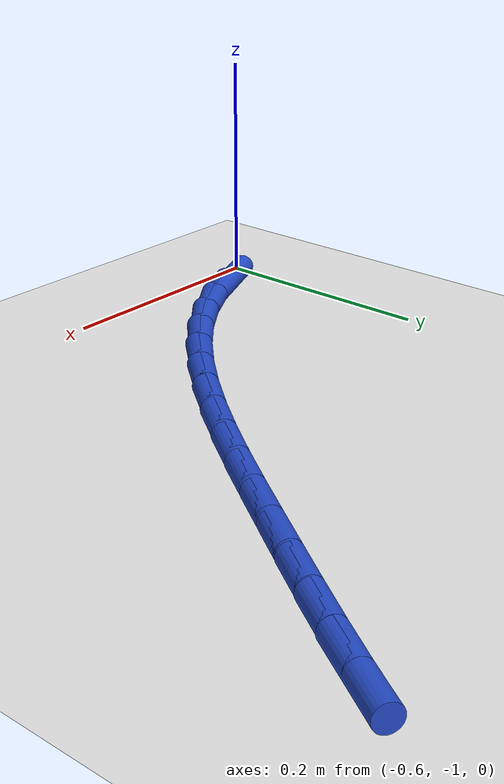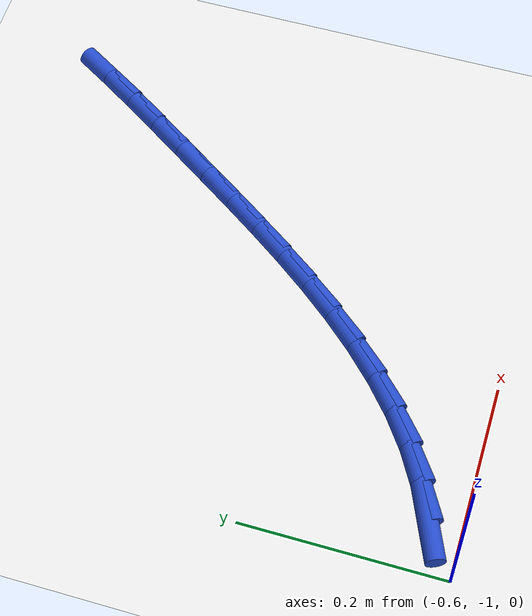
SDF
<sdf version="1.6">
 <world name="default">
  <model name="ground_plane">
   <static>1</static>
   <link name="link">
    <collision name="collision">
     <geometry><plane><normal>0 0 1</normal><size>100 100</size></plane></geometry>
     <surface><friction><ode><mu>100</mu><mu2>50</mu2></ode></friction></surface>
    </collision>
    <visual name="visual">
     <cast_shadows>0</cast_shadows>
     <geometry><plane><normal>0 0 1</normal><size>100 100</size></plane></geometry>
     <material>
      <script><uri>file://media/materials/scripts/gazebo.material</uri><name>Gazebo/WhiteGlow</name></script>
     </material>
    </visual>
   </link>
  </model>
  <model name="line">
   <link name="link_151">
    <pose>-0.5534327806249866 -0.9672916519409277 0.01 0 1.57 0.4067904997622193</pose>
    <collision name="collision">
     <geometry><cylinder><radius>0.01</radius><length>0.08</length></cylinder></geometry>
    </collision>
    <visual name="visual">
     <material>
      <script><name>Gazebo/Blue</name><uri>file://media/materials/scripts/gazebo.material</uri></script>
     </material>
     <geometry><cylinder><radius>0.01</radius><length>0.08</length></cylinder></geometry>
    </visual>
   </link>
   <link name="link_152">
    <pose>-0.5190121394605093 -0.9524625265877732 0.01 0 1.57 0.5188084303446885</pose>
    <collision name="collision">
     <geometry><cylinder><radius>0.01</radius><length>0.08</length></cylinder></geometry>
    </collision>
    <visual name="visual">
     <material>
      <script><name>Gazebo/Blue</name><uri>file://media/materials/scripts/gazebo.material</uri></script>
     </material>
     <geometry><cylinder><radius>0.01</radius><length>0.08</length></cylinder></geometry>
    </visual>
   </link>
   <link name="link_153">
    <pose>-0.4862781835377701 -0.9337720692004823 0.01 0 1.57 0.6174773219399088</pose>
    <collision name="collision">
     <geometry><cylinder><radius>0.01</radius><length>0.08</length></cylinder></geometry>
    </collision>
    <visual name="visual">
     <material>
      <script><name>Gazebo/Blue</name><uri>file://media/materials/scripts/gazebo.material</uri></script>
     </material>
     <geometry><cylinder><radius>0.01</radius><length>0.08</length></cylinder></geometry>
    </visual>
   </link>
   <link name="link_154">
    <pose>-0.4551000719923489 -0.9116322601148277 0.01 0 1.57 0.7021583661522898</pose>
    <collision name="collision">
     <geometry><cylinder><radius>0.01</radius><length>0.08</length></cylinder></geometry>
    </collision>
    <visual name="visual">
     <material>
      <script><name>Gazebo/Blue</name><uri>file://media/materials/scripts/gazebo.material</uri></script>
     </material>
     <geometry><cylinder><radius>0.01</radius><length>0.08</length></cylinder></geometry>
    </visual>
   </link>
   <link name="link_155">
    <pose>-0.4253452433323904 -0.8864601295902007 0.01 0 1.57 0.773369105062369</pose>
    <collision name="collision">
     <geometry><cylinder><radius>0.01</radius><length>0.08</length></cylinder></geometry>
    </collision>
    <visual name="visual">
     <material>
      <script><name>Gazebo/Blue</name><uri>file://media/materials/scripts/gazebo.material</uri></script>
     </material>
     <geometry><cylinder><radius>0.01</radius><length>0.08</length></cylinder></geometry>
    </visual>
   </link>
   <link name="link_156">
    <pose>-0.3968811360660369 -0.8586727078859907 0.01 0 1.57 0.8321376890105101</pose>
    <collision name="collision">
     <geometry><cylinder><radius>0.01</radius><length>0.08</length></cylinder></geometry>
    </collision>
    <visual name="visual">
     <material>
      <script><name>Gazebo/Blue</name><uri>file://media/materials/scripts/gazebo.material</uri></script>
     </material>
     <geometry><cylinder><radius>0.01</radius><length>0.08</length></cylinder></geometry>
    </visual>
   </link>
   <link name="link_157">
    <pose>-0.3695751887014318 -0.8286870252615877 0.01 0 1.57 0.8796371072323843</pose>
    <collision name="collision">
     <geometry><cylinder><radius>0.01</radius><length>0.08</length></cylinder></geometry>
    </collision>
    <visual name="visual">
     <material>
      <script><name>Gazebo/Blue</name><uri>file://media/materials/scripts/gazebo.material</uri></script>
     </material>
     <geometry><cylinder><radius>0.01</radius><length>0.08</length></cylinder></geometry>
    </visual>
   </link>
   <link name="link_158">
    <pose>-0.3432948397467182 -0.7969201119763814 0.01 0 1.57 0.9169647389247189</pose>
    <collision name="collision">
     <geometry><cylinder><radius>0.01</radius><length>0.08</length></cylinder></geometry>
    </collision>
    <visual name="visual">
     <material>
      <script><name>Gazebo/Blue</name><uri>file://media/materials/scripts/gazebo.material</uri></script>
     </material>
     <geometry><cylinder><radius>0.01</radius><length>0.08</length></cylinder></geometry>
    </visual>
   </link>
   <link name="link_159">
    <pose>-0.3179075277100389 -0.7637889982897619 0.01 0 1.57 0.9450270308224129</pose>
    <collision name="collision">
     <geometry><cylinder><radius>0.01</radius><length>0.08</length></cylinder></geometry>
    </collision>
    <visual name="visual">
     <material>
      <script><name>Gazebo/Blue</name><uri>file://media/materials/scripts/gazebo.material</uri></script>
     </material>
     <geometry><cylinder><radius>0.01</radius><length>0.08</length></cylinder></geometry>
    </visual>
   </link>
   <link name="link_160">
    <pose>-0.2932806910995381 -0.7297107144611198 0.01 0 1.57 0.9644855099644889</pose>
    <collision name="collision">
     <geometry><cylinder><radius>0.01</radius><length>0.08</length></cylinder></geometry>
    </collision>
    <visual name="visual">
     <material>
      <script><name>Gazebo/Blue</name><uri>file://media/materials/scripts/gazebo.material</uri></script>
     </material>
     <geometry><cylinder><radius>0.01</radius><length>0.08</length></cylinder></geometry>
    </visual>
   </link>
   <link name="link_161">
    <pose>-0.26928176842335855 -0.695102290749845 0.01 0 1.57 0.9757313829014764</pose>
    <collision name="collision">
     <geometry><cylinder><radius>0.01</radius><length>0.08</length></cylinder></geometry>
    </collision>
    <visual name="visual">
     <material>
      <script><name>Gazebo/Blue</name><uri>file://media/materials/scripts/gazebo.material</uri></script>
     </material>
     <geometry><cylinder><radius>0.01</radius><length>0.08</length></cylinder></geometry>
    </visual>
   </link>
   <link name="link_162">
    <pose>-0.24577819818964355 -0.6603807574153273 0.01 0 1.57 0.9791376374698706</pose>
    <collision name="collision">
     <geometry><cylinder><radius>0.01</radius><length>0.08</length></cylinder></geometry>
    </collision>
    <visual name="visual">
     <material>
      <script><name>Gazebo/Blue</name><uri>file://media/materials/scripts/gazebo.material</uri></script>
     </material>
     <geometry><cylinder><radius>0.01</radius><length>0.08</length></cylinder></geometry>
    </visual>
   </link>
   <link name="link_163">
    <pose>-0.22264309631835594 -0.6259515041980073 0.01 0 1.57 0.9811102712084308</pose>
    <collision name="collision">
     <geometry><cylinder><radius>0.01</radius><length>0.08</length></cylinder></geometry>
    </collision>
    <visual name="visual">
     <material>
      <script><name>Gazebo/Blue</name><uri>file://media/materials/scripts/gazebo.material</uri></script>
     </material>
     <geometry><cylinder><radius>0.01</radius><length>0.08</length></cylinder></geometry>
    </visual>
   </link>
   <link name="link_164">
    <pose>-0.19988604460126436 -0.5919401219410154 0.01 0 1.57 0.9884233768174032</pose>
    <collision name="collision">
     <geometry><cylinder><radius>0.01</radius><length>0.08</length></cylinder></geometry>
    </collision>
    <visual name="visual">
     <material>
      <script><name>Gazebo/Blue</name><uri>file://media/materials/scripts/gazebo.material</uri></script>
     </material>
     <geometry><cylinder><radius>0.01</radius><length>0.08</length></cylinder></geometry>
    </visual>
   </link>
   <link name="link_165">
    <pose>-0.177656442730531 -0.5581855298542254 0.01 0 1.57 1.0015592044810606</pose>
    <collision name="collision">
     <geometry><cylinder><radius>0.01</radius><length>0.08</length></cylinder></geometry>
    </collision>
    <visual name="visual">
     <material>
      <script><name>Gazebo/Blue</name><uri>file://media/materials/scripts/gazebo.material</uri></script>
     </material>
     <geometry><cylinder><radius>0.01</radius><length>0.08</length></cylinder></geometry>
    </visual>
   </link>
   <link name="link_166">
    <pose>-0.1561100383396122 -0.5245136318276349 0.01 0 1.57 1.020645571071903</pose>
    <collision name="collision">
     <geometry><cylinder><radius>0.01</radius><length>0.08</length></cylinder></geometry>
    </collision>
    <visual name="visual">
     <material>
      <script><name>Gazebo/Blue</name><uri>file://media/materials/scripts/gazebo.material</uri></script>
     </material>
     <geometry><cylinder><radius>0.01</radius><length>0.08</length></cylinder></geometry>
    </visual>
   </link>
  </model>
 </world>
</sdf>
